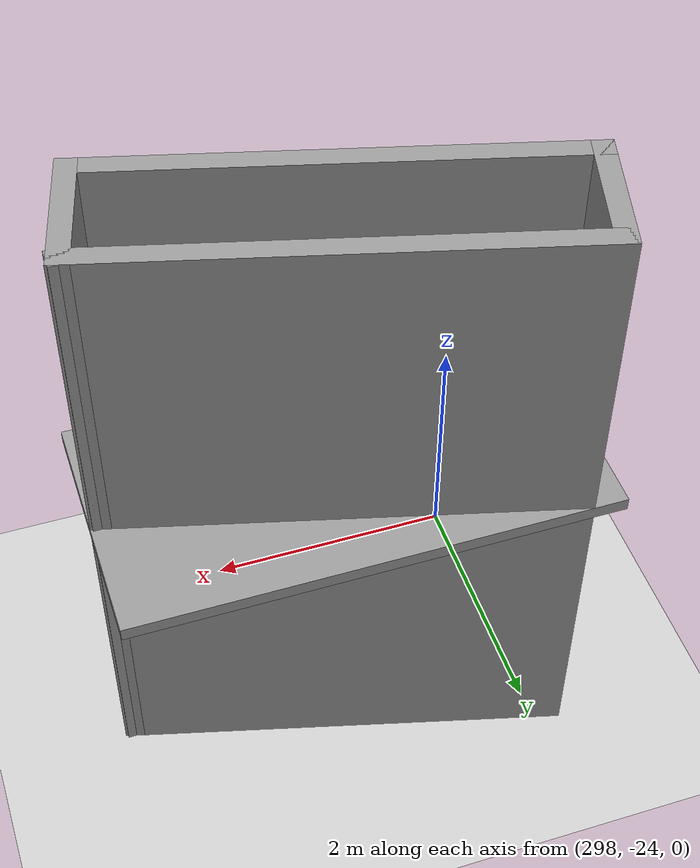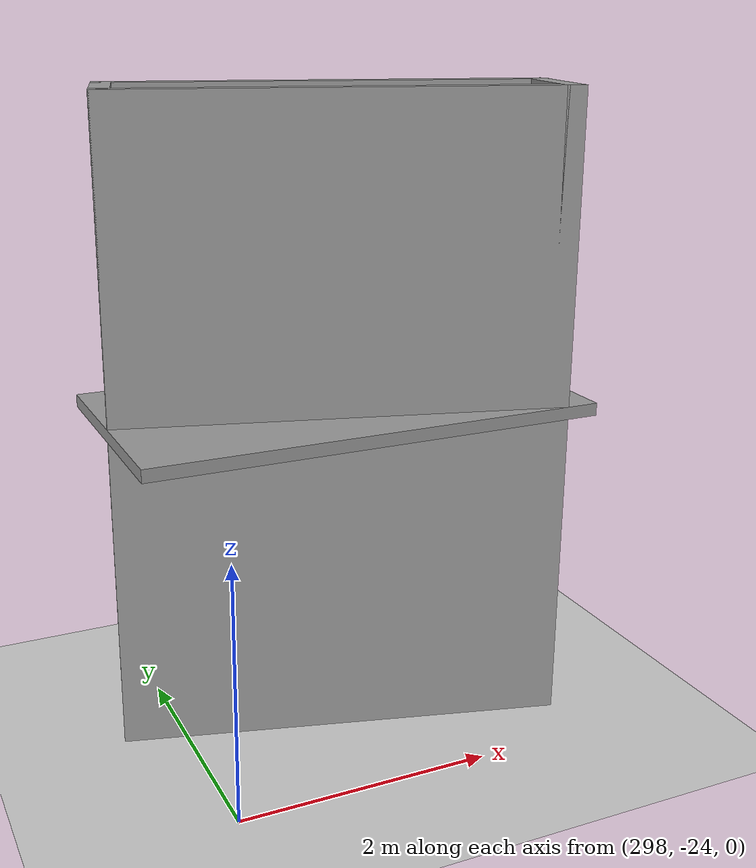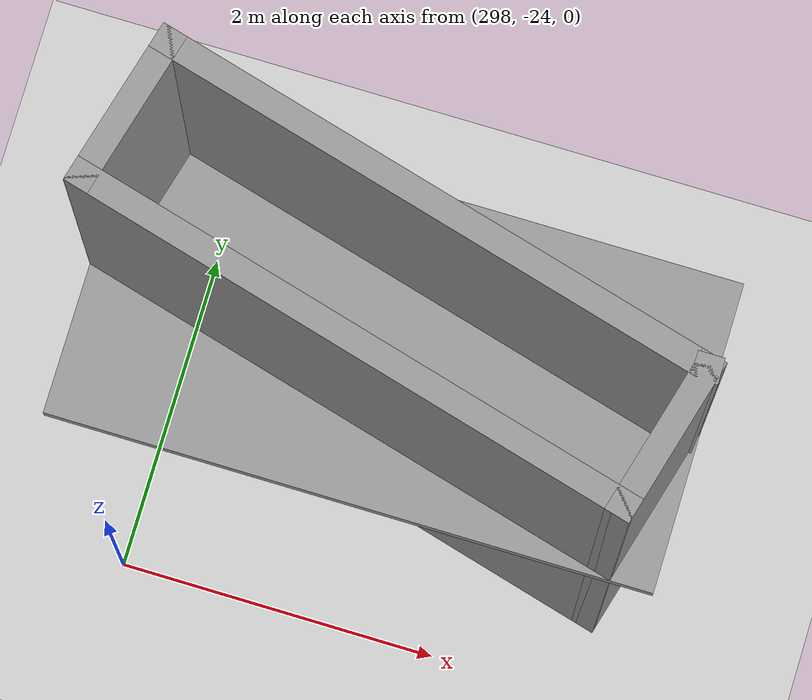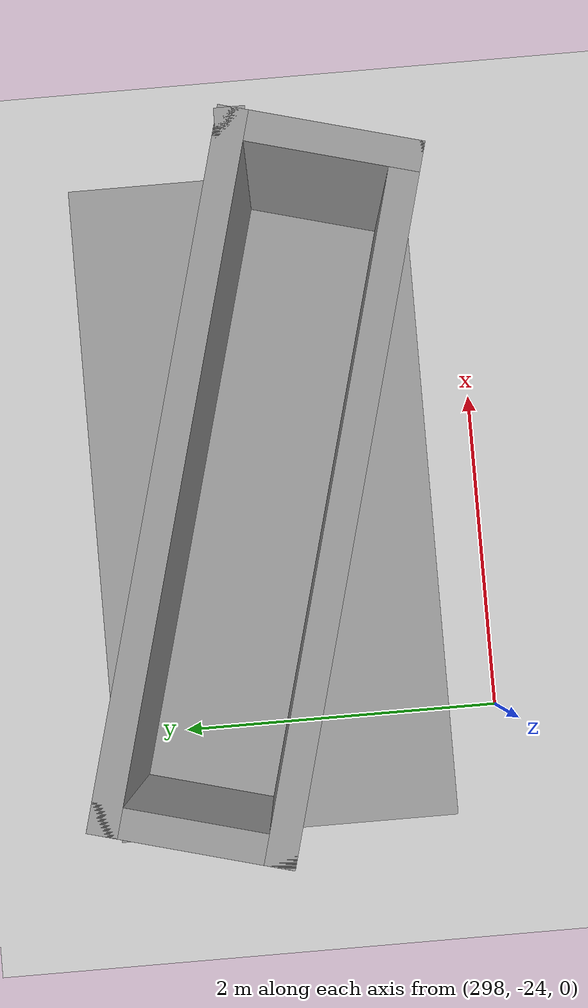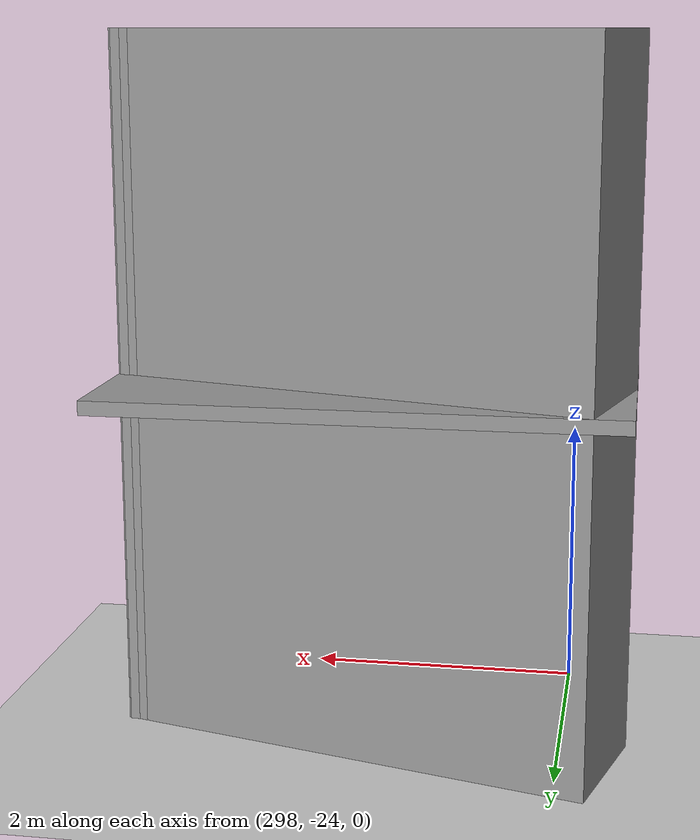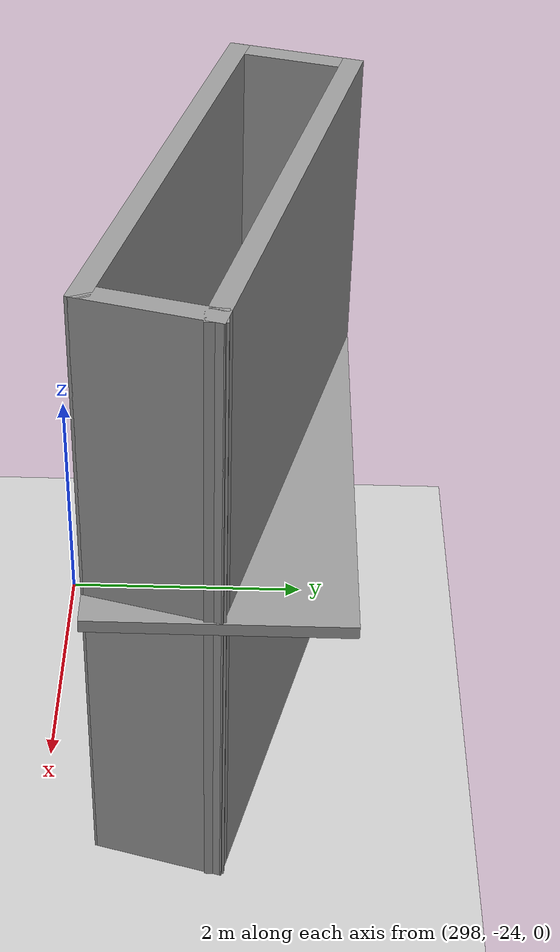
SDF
<sdf version="1.7">
 <world name="default">
  <model name="ground_plane">
   <static>1</static>
   <link name="link">
    <collision name="collision">
     <geometry><plane><normal>0 0 1</normal><size>100 100</size></plane></geometry>
     <surface>
      <contact><collide_bitmask>65535</collide_bitmask></contact>
      <friction><ode><mu>100</mu><mu2>50</mu2></ode></friction>
     </surface>
    </collision>
    <visual name="visual">
     <cast_shadows>0</cast_shadows>
     <geometry><plane><normal>0 0 1</normal><size>100 100</size></plane></geometry>
     <material>
      <script><uri>file://media/materials/scripts/gazebo.material</uri><name>Gazebo/Grey</name></script>
     </material>
    </visual>
   </link>
  </model>
  <model name="Untitled">
   <pose>299.349 -20.0463 0 0 -0 0</pose>
   <link name="Floor_0">
    <collision name="Floor_0_Collision">
     <geometry><box><size>3.63956 1.87179 0.1</size></box></geometry>
     <pose>0 0 0.05 0 -0 0</pose>
    </collision>
    <visual name="Floor_0_Visual">
     <pose>0 0 0.05 0 -0 0</pose>
     <geometry><box><size>3.63956 1.87179 0.1</size></box></geometry>
     <material>
      <script><uri>file://media/materials/scripts/gazebo.material</uri><name>Gazebo/Grey</name></script>
      <ambient>1 1 1 1</ambient>
     </material>
     <meta><layer>1</layer></meta>
    </visual>
    <pose>-0 -2.59055 2.5 0 -0 0</pose>
   </link>
   <link name="Wall_0">
    <collision name="Wall_0_Collision">
     <geometry><box><size>3.5 0.15 2.5</size></box></geometry>
     <pose>0 0 1.25 0 -0 0</pose>
    </collision>
    <visual name="Wall_0_Visual">
     <pose>0 0 1.25 0 -0 0</pose>
     <geometry><box><size>3.5 0.15 2.5</size></box></geometry>
     <material>
      <script><uri>file://media/materials/scripts/gazebo.material</uri><name>Gazebo/Grey</name></script>
      <ambient>1 1 1 1</ambient>
     </material>
     <meta><layer>0</layer></meta>
    </visual>
    <pose>0.109998 -2.18003 0 0 -0 2.87979</pose>
   </link>
   <link name="Wall_1">
    <collision name="Wall_1_Collision">
     <geometry><box><size>1 0.15 2.5</size></box></geometry>
     <pose>0 0 1.25 0 -0 0</pose>
    </collision>
    <visual name="Wall_1_Visual">
     <pose>0 0 1.25 0 -0 0</pose>
     <geometry><box><size>1 0.15 2.5</size></box></geometry>
     <material>
      <script><uri>file://media/materials/scripts/gazebo.material</uri><name>Gazebo/Grey</name></script>
      <ambient>1 1 1 1</ambient>
     </material>
     <meta><layer>0</layer></meta>
    </visual>
    <pose>-1.61793 -2.15703 0 0 -0 -1.8326</pose>
   </link>
   <link name="Wall_10">
    <collision name="Wall_10_Collision">
     <geometry><box><size>0.15 0.15 2.5</size></box></geometry>
     <pose>0 0 1.25 0 -0 0</pose>
    </collision>
    <visual name="Wall_10_Visual">
     <pose>0 0 1.25 0 -0 0</pose>
     <geometry><box><size>0.15 0.15 2.5</size></box></geometry>
     <material>
      <script><uri>file://media/materials/scripts/gazebo.material</uri><name>Gazebo/Grey</name></script>
      <ambient>1 1 1 1</ambient>
     </material>
     <meta><layer>1</layer></meta>
    </visual>
    <pose>1.72792 -2.61355 2.5 0 -0 0</pose>
   </link>
   <link name="Wall_2">
    <collision name="Wall_2_Collision">
     <geometry><box><size>3.5 0.15 2.5</size></box></geometry>
     <pose>0 0 1.25 0 -0 0</pose>
    </collision>
    <visual name="Wall_2_Visual">
     <pose>0 0 1.25 0 -0 0</pose>
     <geometry><box><size>3.5 0.15 2.5</size></box></geometry>
     <material>
      <script><uri>file://media/materials/scripts/gazebo.material</uri><name>Gazebo/Grey</name></script>
      <ambient>1 1 1 1</ambient>
     </material>
     <meta><layer>0</layer></meta>
    </visual>
    <pose>-0.109998 -3.00107 0 0 -0 -0.261799</pose>
   </link>
   <link name="Wall_3">
    <collision name="Wall_3_Collision">
     <geometry><box><size>1 0.15 2.5</size></box></geometry>
     <pose>0 0 1.25 0 -0 0</pose>
    </collision>
    <visual name="Wall_3_Visual">
     <pose>0 0 1.25 0 -0 0</pose>
     <geometry><box><size>1 0.15 2.5</size></box></geometry>
     <material>
      <script><uri>file://media/materials/scripts/gazebo.material</uri><name>Gazebo/Grey</name></script>
      <ambient>1 1 1 1</ambient>
     </material>
     <meta><layer>0</layer></meta>
    </visual>
    <pose>1.61793 -3.02407 0 0 -0 1.309</pose>
   </link>
   <link name="Wall_4">
    <collision name="Wall_4_Collision">
     <geometry><box><size>0.15 0.15 2.5</size></box></geometry>
     <pose>0 0 1.25 0 -0 0</pose>
    </collision>
    <visual name="Wall_4_Visual">
     <pose>0 0 1.25 0 -0 0</pose>
     <geometry><box><size>0.15 0.15 2.5</size></box></geometry>
     <material>
      <script><uri>file://media/materials/scripts/gazebo.material</uri><name>Gazebo/Grey</name></script>
      <ambient>1 1 1 1</ambient>
     </material>
     <meta><layer>0</layer></meta>
    </visual>
    <pose>1.72792 -2.61355 0 0 -0 0</pose>
   </link>
   <link name="Wall_6">
    <collision name="Wall_6_Collision">
     <geometry><box><size>3.5 0.15 2.5</size></box></geometry>
     <pose>0 0 1.25 0 -0 0</pose>
    </collision>
    <visual name="Wall_6_Visual">
     <pose>0 0 1.25 0 -0 0</pose>
     <geometry><box><size>3.5 0.15 2.5</size></box></geometry>
     <material>
      <script><uri>file://media/materials/scripts/gazebo.material</uri><name>Gazebo/Grey</name></script>
      <ambient>1 1 1 1</ambient>
     </material>
     <meta><layer>1</layer></meta>
    </visual>
    <pose>0.109998 -2.18003 2.5 0 -0 2.87979</pose>
   </link>
   <link name="Wall_7">
    <collision name="Wall_7_Collision">
     <geometry><box><size>1 0.15 2.5</size></box></geometry>
     <pose>0 0 1.25 0 -0 0</pose>
    </collision>
    <visual name="Wall_7_Visual">
     <pose>0 0 1.25 0 -0 0</pose>
     <geometry><box><size>1 0.15 2.5</size></box></geometry>
     <material>
      <script><uri>file://media/materials/scripts/gazebo.material</uri><name>Gazebo/Grey</name></script>
      <ambient>1 1 1 1</ambient>
     </material>
     <meta><layer>1</layer></meta>
    </visual>
    <pose>-1.61793 -2.15703 2.5 0 -0 -1.8326</pose>
   </link>
   <link name="Wall_8">
    <collision name="Wall_8_Collision">
     <geometry><box><size>3.5 0.15 2.5</size></box></geometry>
     <pose>0 0 1.25 0 -0 0</pose>
    </collision>
    <visual name="Wall_8_Visual">
     <pose>0 0 1.25 0 -0 0</pose>
     <geometry><box><size>3.5 0.15 2.5</size></box></geometry>
     <material>
      <script><uri>file://media/materials/scripts/gazebo.material</uri><name>Gazebo/Grey</name></script>
      <ambient>1 1 1 1</ambient>
     </material>
     <meta><layer>1</layer></meta>
    </visual>
    <pose>-0.109998 -3.00107 2.5 0 -0 -0.261799</pose>
   </link>
   <link name="Wall_9">
    <collision name="Wall_9_Collision">
     <geometry><box><size>1 0.15 2.5</size></box></geometry>
     <pose>0 0 1.25 0 -0 0</pose>
    </collision>
    <visual name="Wall_9_Visual">
     <pose>0 0 1.25 0 -0 0</pose>
     <geometry><box><size>1 0.15 2.5</size></box></geometry>
     <material>
      <script><uri>file://media/materials/scripts/gazebo.material</uri><name>Gazebo/Grey</name></script>
      <ambient>1 1 1 1</ambient>
     </material>
     <meta><layer>1</layer></meta>
    </visual>
    <pose>1.61793 -3.02407 2.5 0 -0 1.309</pose>
   </link>
   <static>1</static>
  </model>
 </world>
</sdf>
